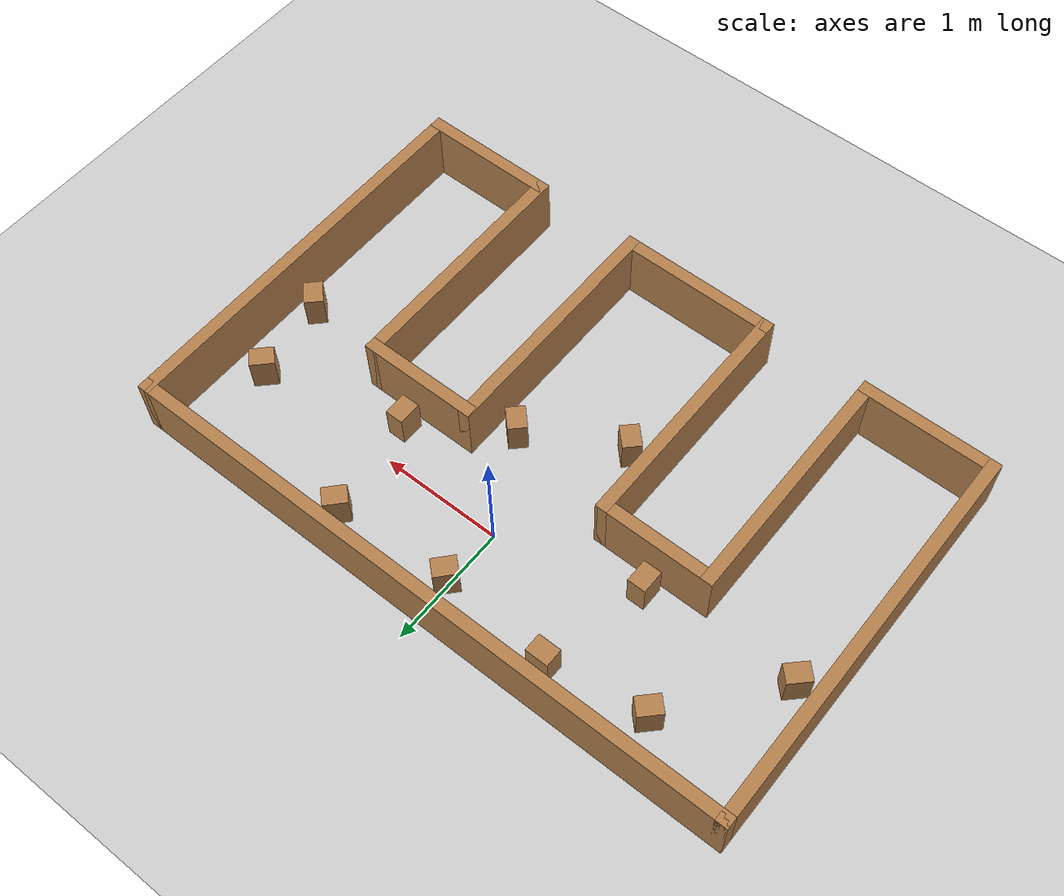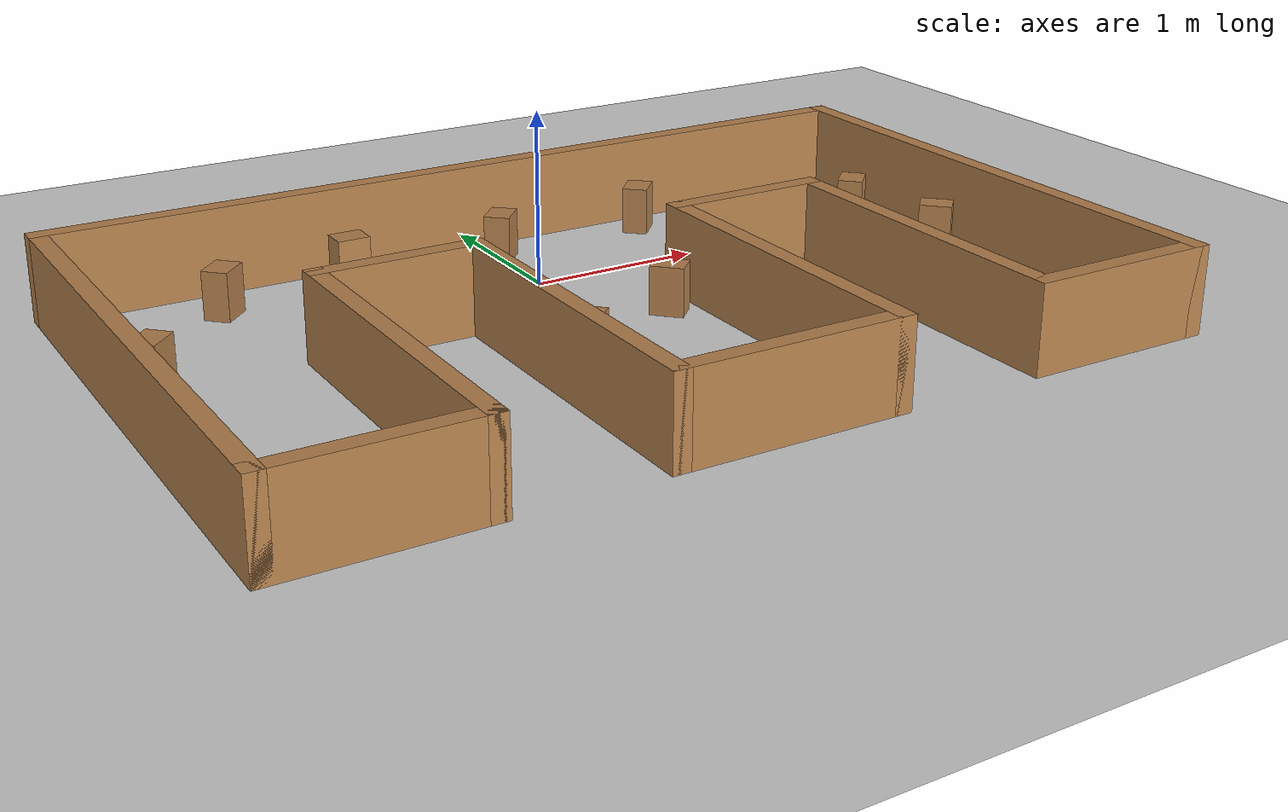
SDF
<sdf version='1.7'>
  <world name='default'>
    <!-- A global light source -->
    <include>
      <uri>model://sun</uri>
    </include>

    <!-- A ground plane -->
    <include>
      <uri>model://ground_plane</uri>
    </include>

    <physics type="ode">
      <real_time_update_rate>0.0</real_time_update_rate>
      <max_step_size>0.003</max_step_size>
      <ode>
        <solver>
          <type>quick</type>
          <iters>150</iters>
          <precon_iters>0</precon_iters>
          <sor>1.400000</sor>
          <use_dynamic_moi_rescaling>1</use_dynamic_moi_rescaling>
        </solver>
        <constraints>
          <cfm>0.00001</cfm>
          <erp>0.2</erp>
          <contact_max_correcting_vel>2000.000000</contact_max_correcting_vel>
          <contact_surface_layer>0.01000</contact_surface_layer>
        </constraints>
      </ode>
    </physics>

    <!-- Load model -->
    <model name='world'>
      <include>
        <uri>model://new_stage_5_3m_small</uri>
        <pose>0 0 0 0 0 0</pose>
      </include>
    </model>

    <model name='cube'>
      <include>
        <uri>model://cube</uri>
        <pose>-0.348447 -1.14023 0 0 0 -0.789999</pose>
      </include>
    </model>
    <model name='cube_0'>
      <include>
        <uri>model://cube</uri>
        <pose>0.396433 -0.746534 0 0 0 -0.79</pose>
      </include>
    </model>
    <model name='cube_1'>
      <include>
        <uri>model://cube</uri>
        <pose>-1.69237 0.425826 0 0 -0 0.79</pose>
      </include>
    </model>
    <model name='cube_2'>
      <include>
        <uri>model://cube</uri>
        <pose>-1.10512 -0.302707 0 0 -0 1.57</pose>
      </include>
    </model>
    <model name='cube_3'>
      <include>
        <uri>model://cube</uri>
        <pose>0.017129 0.493833 0 0 -0 0.837414</pose>
      </include>
    </model>
    <model name='cube_4'>
      <include>
        <uri>model://cube</uri>
        <pose>1.0955 -0.286792 0 0 -0 1.57</pose>
      </include>
    </model>
    <model name='cube_5'>
      <include>
        <uri>model://cube</uri>
        <pose>2.223 0.021228 0 0 -0 0.79</pose>
      </include>
    </model>
    <model name='cube_6'>
      <include>
        <uri>model://cube</uri>
        <pose>-0.904865 0.555102 0 0 -0 0</pose>
      </include>
    </model>
    <model name='cube_7'>
      <include>
        <uri>model://cube</uri>
        <pose>0.990305 0.553447 0 0 -0 0.822021</pose>
      </include>
    </model>
    <model name='cube_8'>
      <include>
        <uri>model://cube</uri>
        <pose>-2.32544 -0.371362 0 0 0 -2.36</pose>
      </include>
    </model>
    <model name='cube_9'>
      <include>
        <uri>model://cube</uri>
        <pose>2.3297 -0.650517 0 0 -0 2.36</pose>
      </include>
    </model>

    <scene>
      <ambient>0.4 0.4 0.4 1</ambient>
      <background>0.7 0.7 0.7 1</background>
      <shadows>false</shadows>
    </scene>

    <gui fullscreen='0'>
      <camera name='user_camera'>
        <pose>-1.58359 -3.62535 12.9428 -0 1.3378 1.58423</pose>
        <view_controller>orbit</view_controller>
        <projection_type>perspective</projection_type>
      </camera>
    </gui>
  </world>
</sdf>

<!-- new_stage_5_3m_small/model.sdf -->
<sdf version='1.7'>
  <model name='new_stage_5_3m_small'>
    <pose>0.0 0.0 0 0 -0 0</pose>
    <link name='Wall_0'>
      <collision name='Wall_0_Collision'>
        <geometry>
          <box>
            <size>5.2 0.1 0.5</size>
          </box>
        </geometry>
        <pose>0 0 0.25 0 -0 0</pose>
      </collision>
      <visual name='Wall_0_Visual'>
        <pose>0 0 0.25 0 -0 0</pose>
        <geometry>
          <box>
            <size>5.2 0.1 0.5</size>
          </box>
        </geometry>
        <material>
          <script>
            <uri>file://media/materials/scripts/gazebo.material</uri>
            <name>Gazebo/Wood</name>
          </script>
          <ambient>1 0.764706 0.305882 1</ambient>
        </material>
        <meta>
          <layer>0</layer>
        </meta>
      </visual>
      <pose>0 0.8 0 0 -0 0</pose>
    </link>
    <link name='Wall_10'>
      <collision name='Wall_10_Collision'>
        <geometry>
          <box>
            <size>2.02 0.1 0.5</size>
          </box>
        </geometry>
        <pose>0 0 0.25 0 -0 0</pose>
      </collision>
      <visual name='Wall_10_Visual'>
        <pose>0 0 0.25 0 -0 0</pose>
        <geometry>
          <box>
            <size>2.02 0.1 0.5</size>
          </box>
        </geometry>
        <material>
          <script>
            <uri>file://media/materials/scripts/gazebo.material</uri>
            <name>Gazebo/Wood</name>
          </script>
          <ambient>1 0.764706 0.305882 1</ambient>
        </material>
        <meta>
          <layer>0</layer>
        </meta>
      </visual>
      <pose>-1.51 -1.44 0 0 -0 1.5708</pose>
    </link>
    <link name='Wall_14'>
      <collision name='Wall_14_Collision'>
        <geometry>
          <box>
            <size>0.99 0.1 0.5</size>
          </box>
        </geometry>
        <pose>0 0 0.25 0 -0 0</pose>
      </collision>
      <visual name='Wall_14_Visual'>
        <pose>0 0 0.25 0 -0 0</pose>
        <geometry>
          <box>
            <size>0.99 0.1 0.5</size>
          </box>
        </geometry>
        <material>
          <script>
            <uri>file://media/materials/scripts/gazebo.material</uri>
            <name>Gazebo/Wood</name>
          </script>
          <ambient>1 0.764706 0.305882 1</ambient>
        </material>
        <meta>
          <layer>0</layer>
        </meta>
      </visual>
      <pose>-1.065 -0.48 0 0 -0 0</pose>
    </link>
    <link name='Wall_16'>
      <collision name='Wall_16_Collision'>
        <geometry>
          <box>
            <size>2.02 0.1 0.5</size>
          </box>
        </geometry>
        <pose>0 0 0.25 0 -0 0</pose>
      </collision>
      <visual name='Wall_16_Visual'>
        <pose>0 0 0.25 0 -0 0</pose>
        <geometry>
          <box>
            <size>2.02 0.1 0.5</size>
          </box>
        </geometry>
        <material>
          <script>
            <uri>file://media/materials/scripts/gazebo.material</uri>
            <name>Gazebo/Wood</name>
          </script>
          <ambient>1 0.764706 0.305882 1</ambient>
        </material>
        <meta>
          <layer>0</layer>
        </meta>
      </visual>
      <pose>-0.62 -1.44 0 0 -0 -1.5708</pose>
    </link>
    <link name='Wall_18'>
      <collision name='Wall_18_Collision'>
        <geometry>
          <box>
            <size>1.34 0.1 0.5</size>
          </box>
        </geometry>
        <pose>0 0 0.25 0 -0 0</pose>
      </collision>
      <visual name='Wall_18_Visual'>
        <pose>0 0 0.25 0 -0 0</pose>
        <geometry>
          <box>
            <size>1.34 0.1 0.5</size>
          </box>
        </geometry>
        <material>
          <script>
            <uri>file://media/materials/scripts/gazebo.material</uri>
            <name>Gazebo/Wood</name>
          </script>
          <ambient>1 0.764706 0.305882 1</ambient>
        </material>
        <meta>
          <layer>0</layer>
        </meta>
      </visual>
      <pose>0 -2.4 0 0 -0 0</pose>
    </link>
    <link name='Wall_2'>
      <collision name='Wall_2_Collision'>
        <geometry>
          <box>
            <size>3.3 0.1 0.5</size>
          </box>
        </geometry>
        <pose>0 0 0.25 0 -0 0</pose>
      </collision>
      <visual name='Wall_2_Visual'>
        <pose>0 0 0.25 0 -0 0</pose>
        <geometry>
          <box>
            <size>3.3 0.1 0.5</size>
          </box>
        </geometry>
        <material>
          <script>
            <uri>file://media/materials/scripts/gazebo.material</uri>
            <name>Gazebo/Wood</name>
          </script>
          <ambient>1 0.764706 0.305882 1</ambient>
        </material>
        <meta>
          <layer>0</layer>
        </meta>
      </visual>
      <pose>-2.55 -0.8 0 0 -0 -1.5708</pose>
    </link>
    <link name='Wall_20'>
      <collision name='Wall_20_Collision'>
        <geometry>
          <box>
            <size>2.02 0.1 0.5</size>
          </box>
        </geometry>
        <pose>0 0 0.25 0 -0 0</pose>
      </collision>
      <visual name='Wall_20_Visual'>
        <pose>0 0 0.25 0 -0 0</pose>
        <geometry>
          <box>
            <size>2.02 0.1 0.5</size>
          </box>
        </geometry>
        <material>
          <script>
            <uri>file://media/materials/scripts/gazebo.material</uri>
            <name>Gazebo/Wood</name>
          </script>
          <ambient>1 0.764706 0.305882 1</ambient>
        </material>
        <meta>
          <layer>0</layer>
        </meta>
      </visual>
      <pose>0.62 -1.44 0 0 -0 1.5708</pose>
    </link>
    <link name='Wall_22'>
      <collision name='Wall_22_Collision'>
        <geometry>
          <box>
            <size>0.99 0.1 0.5</size>
          </box>
        </geometry>
        <pose>0 0 0.25 0 -0 0</pose>
      </collision>
      <visual name='Wall_22_Visual'>
        <pose>0 0 0.25 0 -0 0</pose>
        <geometry>
          <box>
            <size>0.99 0.1 0.5</size>
          </box>
        </geometry>
        <material>
          <script>
            <uri>file://media/materials/scripts/gazebo.material</uri>
            <name>Gazebo/Wood</name>
          </script>
          <ambient>1 0.764706 0.305882 1</ambient>
        </material>
        <meta>
          <layer>0</layer>
        </meta>
      </visual>
      <pose>1.065 -0.48 0 0 -0 0</pose>
    </link>
    <link name='Wall_24'>
      <collision name='Wall_24_Collision'>
        <geometry>
          <box>
            <size>2.02 0.1 0.5</size>
          </box>
        </geometry>
        <pose>0 0 0.25 0 -0 0</pose>
      </collision>
      <visual name='Wall_24_Visual'>
        <pose>0 0 0.25 0 -0 0</pose>
        <geometry>
          <box>
            <size>2.02 0.1 0.5</size>
          </box>
        </geometry>
        <material>
          <script>
            <uri>file://media/materials/scripts/gazebo.material</uri>
            <name>Gazebo/Wood</name>
          </script>
          <ambient>1 0.764706 0.305882 1</ambient>
        </material>
        <meta>
          <layer>0</layer>
        </meta>
      </visual>
      <pose>1.51 -1.44 0 0 -0 -1.5708</pose>
    </link>
    <link name='Wall_26'>
      <collision name='Wall_26_Collision'>
        <geometry>
          <box>
            <size>1.14 0.1 0.5</size>
          </box>
        </geometry>
        <pose>0 0 0.25 0 -0 0</pose>
      </collision>
      <visual name='Wall_26_Visual'>
        <pose>0 0 0.25 0 -0 0</pose>
        <geometry>
          <box>
            <size>1.14 0.1 0.5</size>
          </box>
        </geometry>
        <material>
          <script>
            <uri>file://media/materials/scripts/gazebo.material</uri>
            <name>Gazebo/Wood</name>
          </script>
          <ambient>1 0.764706 0.305882 1</ambient>
        </material>
        <meta>
          <layer>0</layer>
        </meta>
      </visual>
      <pose>2.03 -2.4 0 0 -0 0</pose>
    </link>
    <link name='Wall_28'>
      <collision name='Wall_28_Collision'>
        <geometry>
          <box>
            <size>3.3 0.1 0.5</size>
          </box>
        </geometry>
        <pose>0 0 0.25 0 -0 0</pose>
      </collision>
      <visual name='Wall_28_Visual'>
        <pose>0 0 0.25 0 -0 0</pose>
        <geometry>
          <box>
            <size>3.3 0.1 0.5</size>
          </box>
        </geometry>
        <material>
          <script>
            <uri>file://media/materials/scripts/gazebo.material</uri>
            <name>Gazebo/Wood</name>
          </script>
          <ambient>1 0.764706 0.305882 1</ambient>
        </material>
        <meta>
          <layer>0</layer>
        </meta>
      </visual>
      <pose>2.55 -0.8 0 0 -0 -1.5708</pose>
    </link>
    <link name='Wall_8'>
      <collision name='Wall_8_Collision'>
        <geometry>
          <box>
            <size>1.14 0.1 0.5</size>
          </box>
        </geometry>
        <pose>0 0 0.25 0 -0 0</pose>
      </collision>
      <visual name='Wall_8_Visual'>
        <pose>0 0 0.25 0 -0 0</pose>
        <geometry>
          <box>
            <size>1.14 0.1 0.5</size>
          </box>
        </geometry>
        <material>
          <script>
            <uri>file://media/materials/scripts/gazebo.material</uri>
            <name>Gazebo/Wood</name>
          </script>
          <ambient>1 0.764706 0.305882 1</ambient>
        </material>
        <meta>
          <layer>0</layer>
        </meta>
      </visual>
      <pose>-2.03 -2.4 0 0 -0 0</pose>
    </link>
    <static>1</static>
  </model>
</sdf>

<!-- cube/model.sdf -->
<sdf version='1.7'>
  <model name='cube'>
    <static>true</static>
    <pose>0 0 0 0 -0 0</pose>
    <link name='Wall_28'>
      <collision name='Wall_28_Collision'>
        <geometry>
          <box>
            <size>0.19 0.15 0.28</size>
          </box>
        </geometry>
        <pose>0 0 0.14 0 -0 0</pose>
      </collision>
      <visual name='Wall_28_Visual'>
        <pose>0 0 0.14 0 -0 0</pose>
        <geometry>
          <box>
            <size>0.19 0.15 0.28</size>
          </box>
        </geometry>
        <material>
          <script>
            <uri>file://media/materials/scripts/gazebo.material</uri>
            <name>Gazebo/Wood</name>
          </script>
          <ambient>1 0.764706 0.305882 1</ambient>
        </material>
        <meta>
          <layer>0</layer>
        </meta>
      </visual>
      <pose>0 0 0 0 -0 0</pose>
    </link>
    <static>1</static>
  </model>
</sdf>
